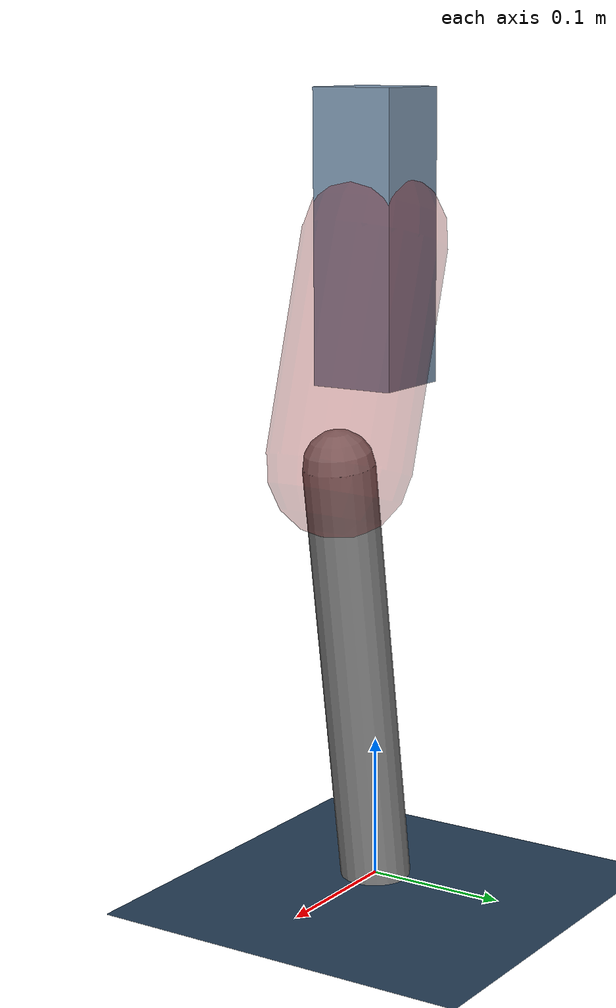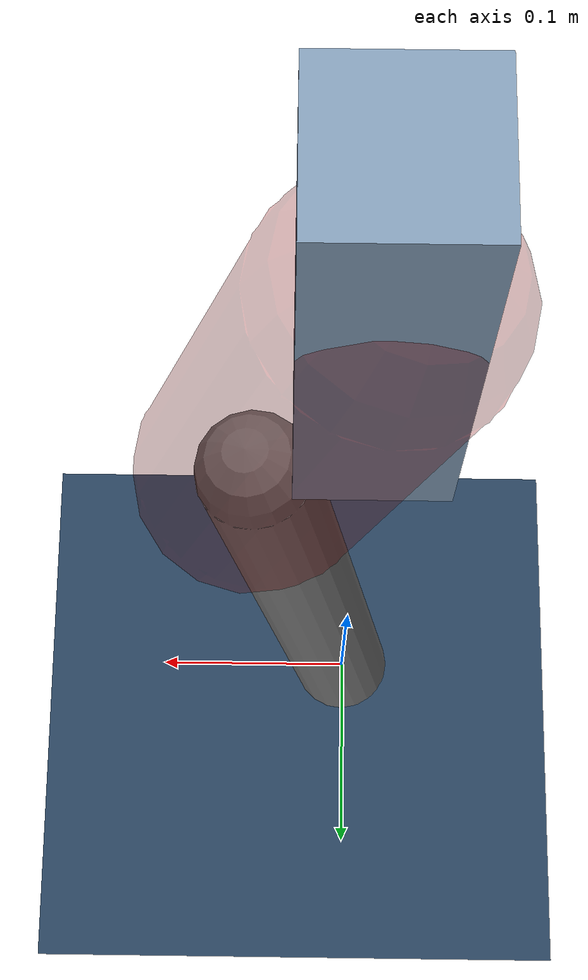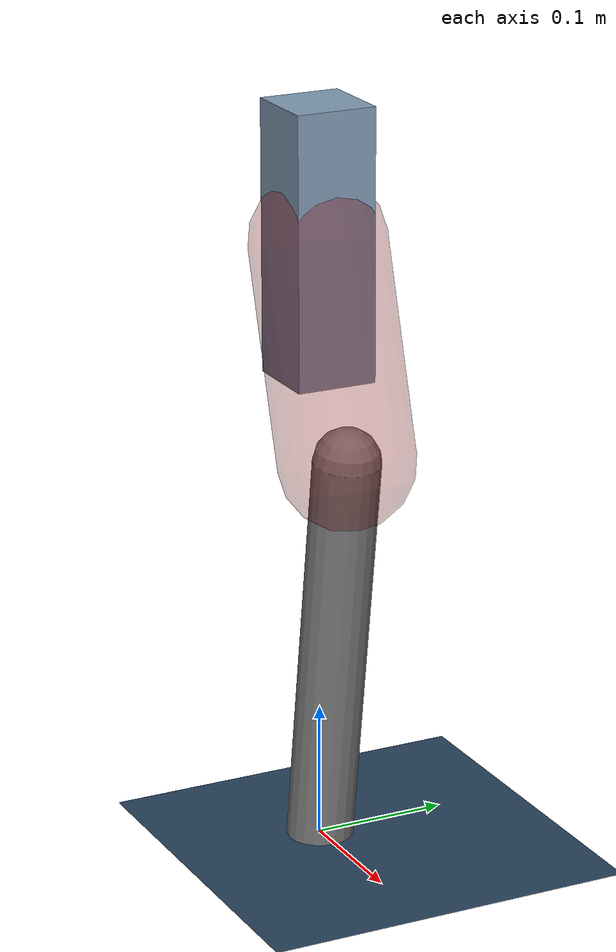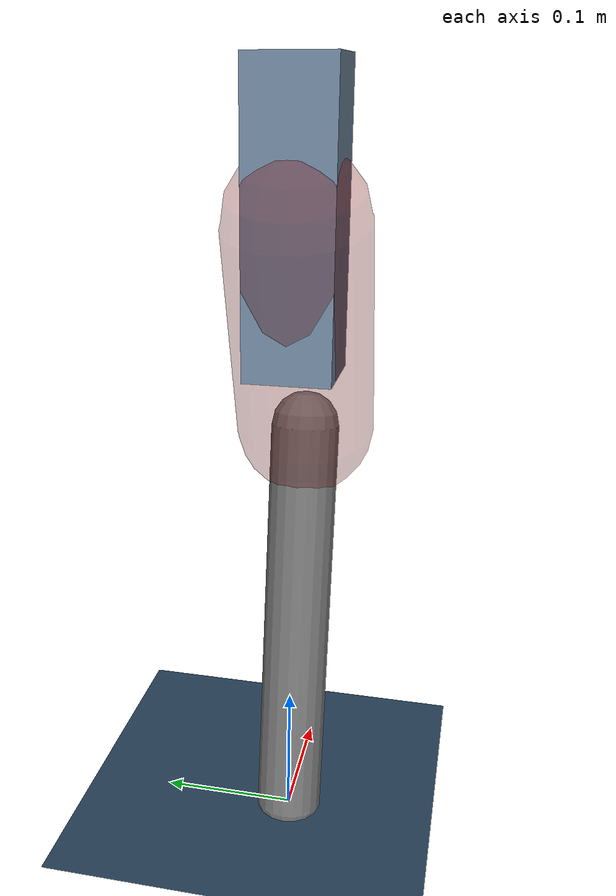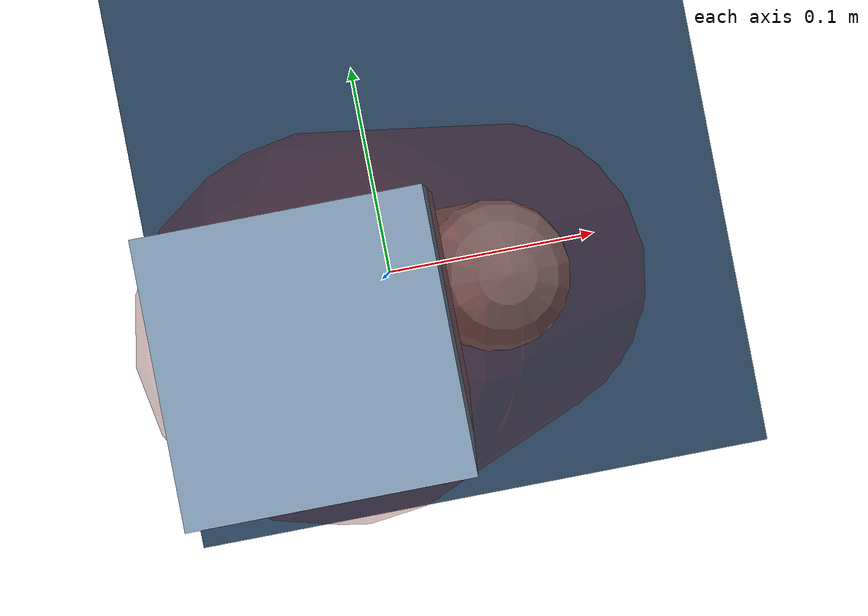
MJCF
<mujoco model="Hopper2D">
	<compiler inertiafromgeom="true" angle="radian" />
	<option timestep="0.001" integrator="implicit" cone="elliptic" solver="Newton" tolerance="1e-10" />

	<default>
		<geom contype="1" conaffinity="1" condim="3" friction="2 0.005 0.0001" solref="0.005 1" />
		<joint limited="true" damping="0.1" />
	</default>

	<asset>
		<texture name="skybox" type="skybox" builtin="gradient" rgb1=".4 .6 .8" rgb2="0 0 0" width="800" height="800" />
		<texture name="grid" type="2d" builtin="checker" rgb1=".1 .2 .3" rgb2=".2 .3 .4" width="300" height="300" mark="edge" markrgb=".2 .3 .4" />
		<material name="ground" texture="grid" texrepeat="1 1" texuniform="true" reflectance="0.1" />
		<material name="leg" rgba="0.5 0.6 0.7 1" />
	</asset>

	<worldbody>

		<geom name="floor" type="plane" size="5 5 0.25" material="ground" />

		<light directional="false" diffuse="0.8 0.8 0.8" specular="0.3 0.3 0.3" pos="0 0 2" dir="0 0 -1" />
		<light mode="targetbodycom" target="base" directional="false" diffuse="0.8 0.8 0.8" specular="0.3 0.3 0.3" pos="0 0 2" dir="0 0 -1" />

		<camera name="fixed" pos="0 -2 1" xyaxes="1 0 0 0 0 1" />
		<camera name="tracking" mode="trackcom" pos="0 -3 1" />

		<body name="root" pos="0 0 0.45563350188533946">
			<joint name="slide_x" type="slide" axis="1 0 0" range="-100 100" />
			<joint name="slide_z" type="slide" axis="0 0 1" range="0 10" />

			<body name="base" pos="0 0 0">
				<geom name="torso" type="box" size="0.03 0.03 0.1" mass="1.556" material="leg" />

				<body name="link1" pos="0 0 0" euler="0 1.2779530350913277 0">
					<joint type="hinge" axis="0 -1 0" pos="0 0 0" name="hinge1" limited="true" range="-3.14 3.14" stiffness="0" damping="0.1" />
					<geom name="thigh" type="capsule" fromto="0 0 0 0.15669029665573417 0 0" size="0.05" rgba="0.5 0 0 0.3" mass="0.624356711973762" />

					<body name="link2" pos="0.15669029665573417 0 0" euler="0 0.4397824419640124 0">
						<joint type="hinge" axis="0 -1 0" pos="0 0 0" name="hinge2" limited="true" range="-3.14 3.14" stiffness="0" damping="0.1" />
						<geom name="shank" type="capsule" fromto="0 0 0 0.30894320522960533 0 0" size="0.025" mass="0.4906545641836843" />

					</body>
				</body>
			</body>
		</body>
	</worldbody>

	<actuator>
		<motor name="torque1" joint="hinge1" ctrlrange="-25.375305347420525 25.375305347420525" ctrllimited="true" gear="1" />
		<motor name="torque2" joint="hinge2" ctrlrange="-18.085897002867885 18.085897002867885" ctrllimited="true" gear="1" />
	</actuator>
</mujoco>
